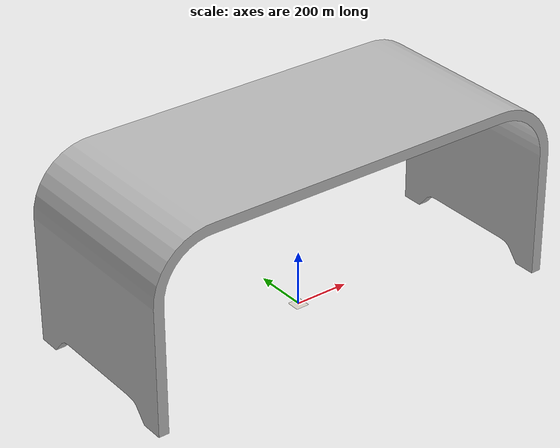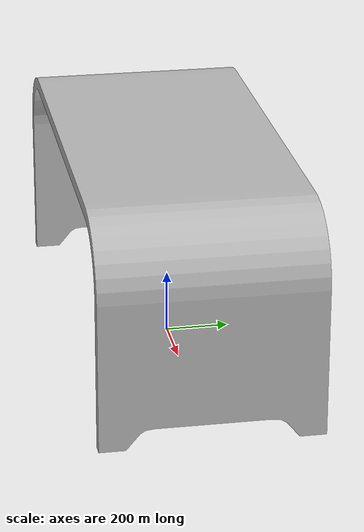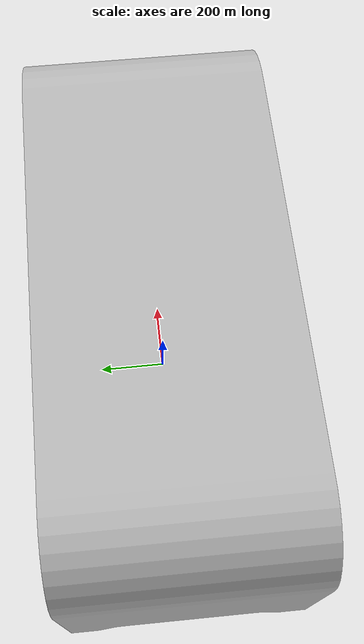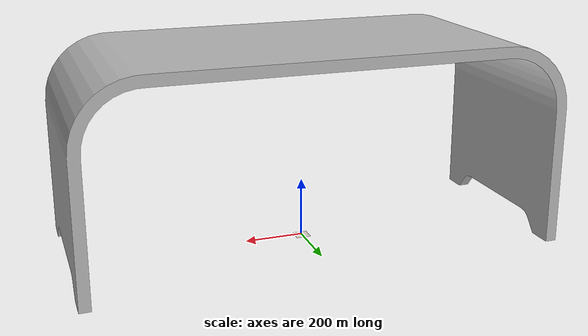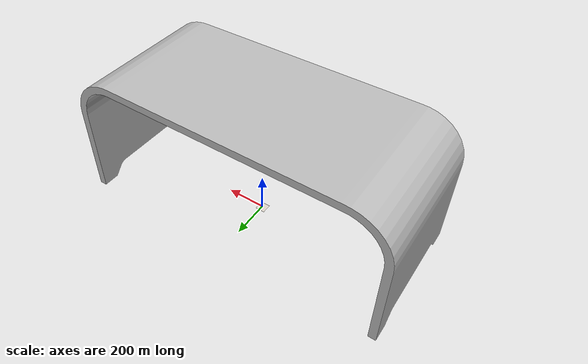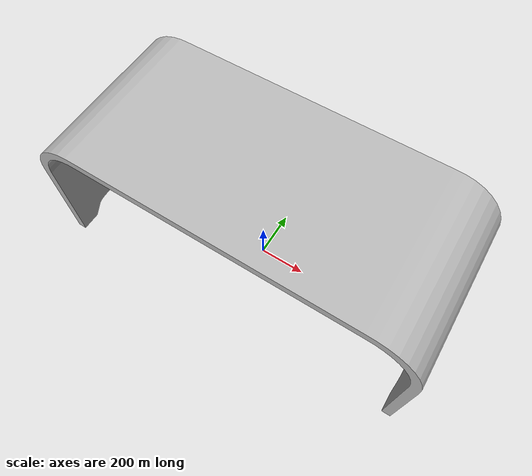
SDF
<?xml version="1.0"?>
<sdf version="1.6">
    <world name="mundo_simulacion">
        <!-- Si declaramos al menos 1 plugin, debemos manualmente incorporar los plugins básicos para que gazebo funcione! -->
        <!-- Físicas -->
        <plugin filename="gz-sim-physics-system" name="gz::sim::systems::Physics"> </plugin>
        <!-- SIN ESTO no existe el servicio /world/default/create -->
        <plugin filename="gz-sim-user-commands-system" name="gz::sim::systems::UserCommands"> </plugin>
        <!-- Necesario para que ros_gz_sim pueda hacer broadcast del scene -->
        <plugin filename="gz-sim-scene-broadcaster-system" name="gz::sim::systems::SceneBroadcaster"> </plugin>
        <!-- Recién ahora podemos hablar de poner un sensor u otro plugin en el SDF! -->

        <physics name="1ms" type="ode">
            <max_step_size>0.001</max_step_size>
            <real_time_factor>1.0</real_time_factor>
            <real_time_update_rate>1000</real_time_update_rate>
        </physics>

        <gravity>0 0 -9.8</gravity>

        <light name="sol" type="directional">
            <cast_shadows>true</cast_shadows>
            <pose>0 0 10 0 0 0</pose>
            <diffuse>0.8 0.8 0.8 1</diffuse>
            <specular>0.2 0.2 0.2 1</specular>
            <direction>-0.5 0.1 -0.9</direction>
        </light>

        <include>
            <uri>model://Desk</uri>
            <pose>-0.2 0.0 0.0 0 0 0</pose>
        </include>

        <model name="suelo">
            <static>true</static>
            <link name="suelo_link">
                <collision name="suelo_collision">
                    <geometry>
                        <plane>
                            <normal>0 0 1</normal> <!-- Normal hacia arriba en Z -->
                            <size>50 50</size> <!-- Superficie grande para cubrir el área -->
                        </plane>
                    </geometry>
                    <surface>
                        <contact>
                            <ode>
                                <kp>100000</kp> <!-- Rigidez del contacto -->
                                <kd>1.0</kd>      <!-- Amortiguación del contacto -->
                            </ode>
                        </contact>
                        <friction>
                            <ode>
                                <mu>1.0</mu> <!-- Coeficiente de fricción -->
                                <mu2>1.0</mu2>
                            </ode>
                        </friction>
                    </surface>
                </collision>
                <visual name="suelo_visual">
                    <geometry>
                        <plane>
                            <normal>0 0 1</normal>
                            <size>50 50</size>
                        </plane>
                    </geometry>
                    <material>
                        <ambient>0.85 0.82 0.78 1</ambient>
                        <diffuse>0.85 0.82 0.78 1</diffuse>
                    </material>
                </visual>
            </link>
        </model>

        <!-- Pilar alto, al frente del robot. Tope en z = 0.552 + 0.28 = 0.832 -->
        <model name="torre_alta">
            <static>true</static>
            <pose>-0.22 -0.06 0.692 0 0 0</pose>
            <link name="link">
                <visual name="visual">
                    <geometry>
                        <box><size>0.06 0.06 0.28</size></box>
                    </geometry>
                    <material>
                        <ambient>0.8 0.2 0.2 1</ambient>
                        <diffuse>0.9 0.25 0.25 1</diffuse>
                    </material>
                </visual>
                <collision name="collision">
                    <geometry>
                        <box><size>0.06 0.06 0.28</size></box>
                    </geometry>
                </collision>
            </link>
        </model>

        <!-- Pilar medio, del lado +y. Tope en z = 0.552 + 0.20 = 0.752 -->
        <model name="torre_media">
            <static>true</static>
            <pose>-0.22 0.16 0.652 0 0 0</pose>
            <link name="link">
                <visual name="visual">
                    <geometry>
                        <box><size>0.06 0.06 0.20</size></box>
                    </geometry>
                    <material>
                        <ambient>0.2 0.5 0.8 1</ambient>
                        <diffuse>0.25 0.6 0.9 1</diffuse>
                    </material>
                </visual>
                <collision name="collision">
                    <geometry>
                        <box><size>0.06 0.06 0.20</size></box>
                    </geometry>
                </collision>
            </link>
        </model>

        <!-- Pilar bajo, del lado -y. Tope en z = 0.552 + 0.12 = 0.672 -->
        <model name="torre_baja">
            <static>true</static>
            <pose>-0.22 -0.28 0.612 0 0 0</pose>
            <link name="link">
                <visual name="visual">
                    <geometry>
                        <box><size>0.06 0.06 0.12</size></box>
                    </geometry>
                    <material>
                        <ambient>0.9 0.7 0.1 1</ambient>
                        <diffuse>1.0 0.8 0.15 1</diffuse>
                    </material>
                </visual>
                <collision name="collision">
                    <geometry>
                        <box><size>0.06 0.06 0.12</size></box>
                    </geometry>
                </collision>
            </link>
        </model>
    </world>
</sdf>

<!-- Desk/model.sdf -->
<sdf version="1.5">
  <model name="Desk">
    <static>true</static>
    <link name="link">
      <pose>0 0 0 0 0 0</pose>

        <visual name="visual">
          <geometry>
            <mesh><uri>model://Desk/meshes/desk.obj</uri></mesh>
          </geometry>
        </visual>

        <collision name="tapa">
          <pose>-0.014 0 0.532 0 0 0</pose>
          <geometry>
            <box><size>0.4906 0.8437 0.04</size></box>
          </geometry>
        </collision>

        <collision name="cuerpo">
          <pose>-0.014 0 0.256 0 0 0</pose>
          <geometry>
            <box><size>0.4906 0.8437 0.512</size></box>
          </geometry>
        </collision>

    </link>
  </model>
</sdf>
